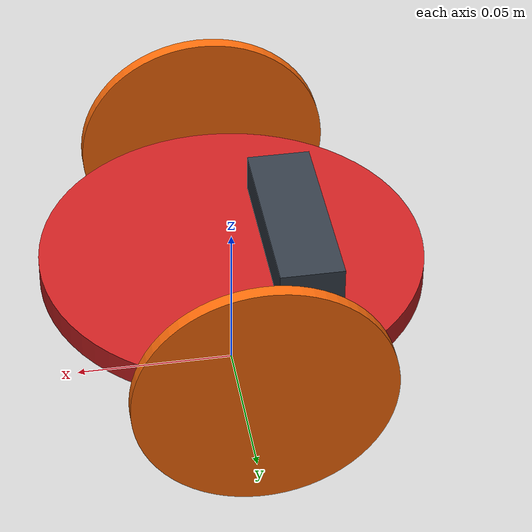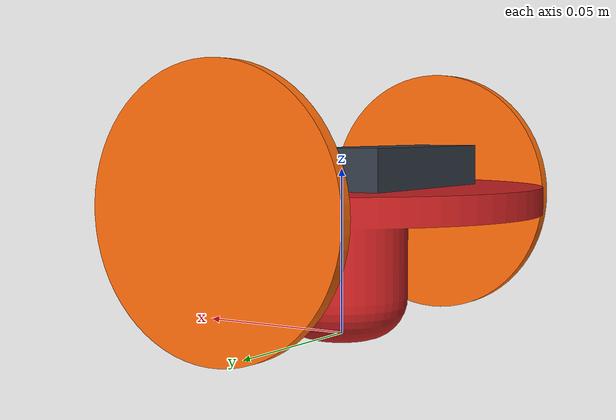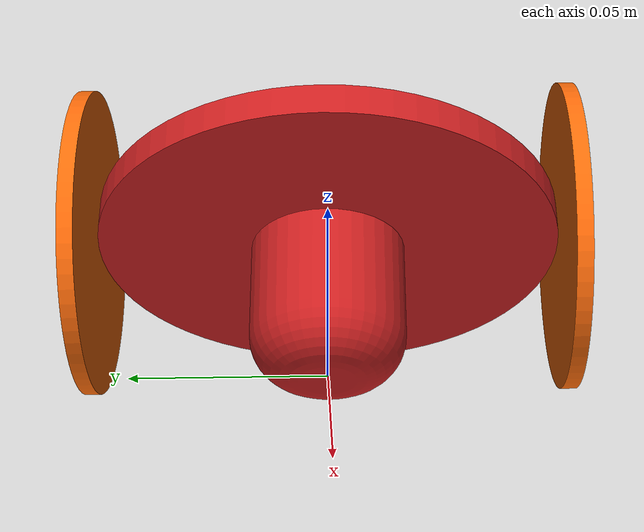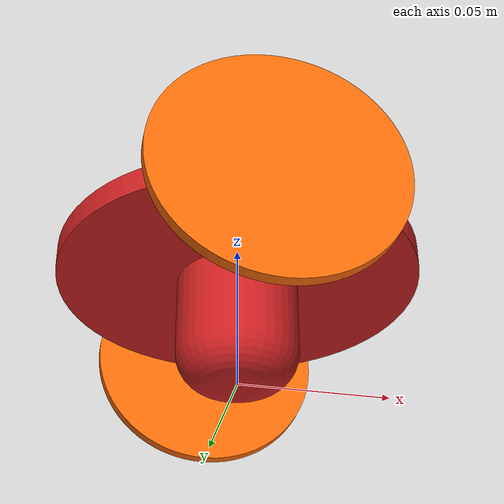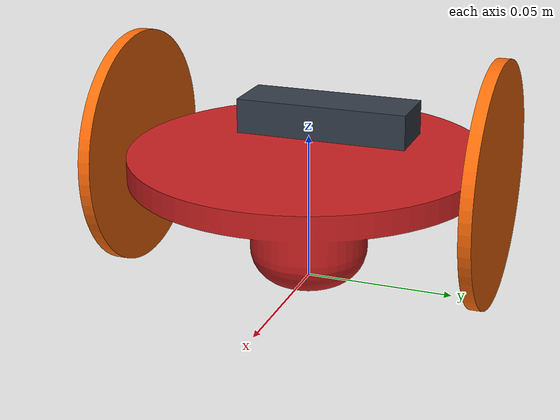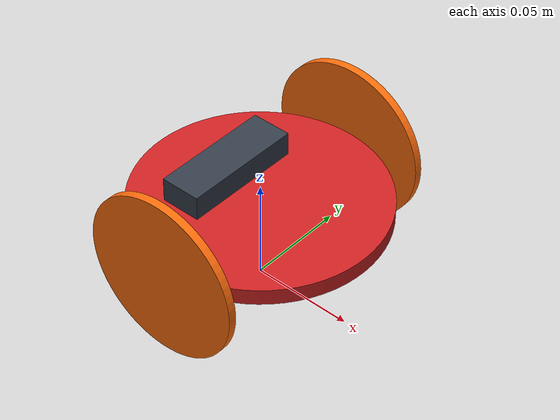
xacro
<?xml version="1.0" ?>
<robot name="m2wr_description" xmlns:xacro="http://www.ros.org/wiki/xacro">

<xacro:include filename="$(find m2wr_description_description)/urdf/materials.xacro" />
<xacro:include filename="$(find m2wr_description_description)/urdf/m2wr_description.trans" />
<xacro:include filename="$(find m2wr_description_description)/urdf/m2wr_description.gazebo" />
<link name="base_link">
  <inertial>
    <origin rpy="0 0 0" xyz="-6.009357995619763e-17 -1.4235303499013823e-09 0.03360579876868525"/>
    <mass value="1.0339660627846412"/>
    <inertia ixx="0.000794" ixy="-0.0" ixz="-0.0" iyy="0.000826" iyz="-0.0" izz="0.001313"/>
  </inertial>
  <visual>
    <origin rpy="0 0 0" xyz="0 0 0"/>
    <geometry>
      <mesh filename="package://m2wr_description_description/meshes/base_link.stl" scale="0.001 0.001 0.001"/>
    </geometry>
    <material name="red"/>
  </visual>
  <collision>
    <origin rpy="0 0 0" xyz="0 0 0"/>
    <geometry>
      <mesh filename="package://m2wr_description_description/meshes/base_link.stl" scale="0.001 0.001 0.001"/>
    </geometry>
  </collision>
</link>

<link name="Component3_1">
  <inertial>
    <origin rpy="0 0 0" xyz="-4.9394705546698643e-17 -0.0019998049718631117 1.7202944714578283e-07"/>
    <mass value="0.1578336149163506"/>
    <inertia ixx="6.3e-05" ixy="0.0" ixz="-0.0" iyy="0.000126" iyz="0.0" izz="6.3e-05"/>
  </inertial>
  <visual>
    <origin rpy="0 0 0" xyz="0.0 0.060002 -0.040407"/>
    <geometry>
      <mesh filename="package://m2wr_description_description/meshes/Component3_1.stl" scale="0.001 0.001 0.001"/>
    </geometry>
    <material name="orange"/>
  </visual>
  <collision>
    <origin rpy="0 0 0" xyz="0.0 0.060002 -0.040407"/>
    <geometry>
      <mesh filename="package://m2wr_description_description/meshes/Component3_1.stl" scale="0.001 0.001 0.001"/>
    </geometry>
  </collision>
</link>

<link name="Component2_1">
  <inertial>
    <origin rpy="0 0 0" xyz="-3.427331697555865e-17 0.001999804971863098 1.7202944462002545e-07"/>
    <mass value="0.15783361491635134"/>
    <inertia ixx="6.3e-05" ixy="0.0" ixz="-0.0" iyy="0.000126" iyz="0.0" izz="6.3e-05"/>
  </inertial>
  <visual>
    <origin rpy="0 0 0" xyz="0.0 -0.060002 -0.040407"/>
    <geometry>
      <mesh filename="package://m2wr_description_description/meshes/Component2_1.stl" scale="0.001 0.001 0.001"/>
    </geometry>
    <material name="orange"/>
  </visual>
  <collision>
    <origin rpy="0 0 0" xyz="0.0 -0.060002 -0.040407"/>
    <geometry>
      <mesh filename="package://m2wr_description_description/meshes/Component2_1.stl" scale="0.001 0.001 0.001"/>
    </geometry>
  </collision>
</link>

<link name="Component4_1">
  <inertial>
    <origin rpy="0 0 0" xyz="-0.020000000000000046 2.220446049250313e-18 0.005999856949279396"/>
    <mass value="0.11304"/>
    <inertia ixx="3.5e-05" ixy="0.0" ixz="-0.0" iyy="5e-06" iyz="0.0" izz="3.8e-05"/>
  </inertial>
  <visual>
    <origin rpy="0 0 0" xyz="0.0 -0.0 -0.045005"/>
    <geometry>
      <mesh filename="package://m2wr_description_description/meshes/Component4_1.stl" scale="0.001 0.001 0.001"/>
    </geometry>
    <material name="blue"/>
  </visual>
  <collision>
    <origin rpy="0 0 0" xyz="0.0 -0.0 -0.045005"/>
    <geometry>
      <mesh filename="package://m2wr_description_description/meshes/Component4_1.stl" scale="0.001 0.001 0.001"/>
    </geometry>
   <surface>
      <friction>
        <ode>
          <mu>0</mu>
          <mu2>0</mu2>
          <slip1>1.0</slip1>
          <slip2>1.0</slip2>
        </ode>
      </friction>
	</surface>
  </collision>
</link>

<joint name="Rev1" type="continuous">
  <origin rpy="0 0 0" xyz="0.0 -0.060002 0.040407"/>
  <parent link="base_link"/>
  <child link="Component3_1"/>
  <axis xyz="0.0 1.0 -0.0"/>
</joint>

<joint name="Rev2" type="continuous">
  <origin rpy="0 0 0" xyz="0.0 0.060002 0.040407"/>
  <parent link="base_link"/>
  <child link="Component2_1"/>
  <axis xyz="0.0 1.0 -0.0"/>
</joint>

<joint name="Rigid3" type="fixed">
  <origin rpy="0 0 0" xyz="0.0 0.0 0.045005"/>
  <parent link="base_link"/>
  <child link="Component4_1"/>
</joint>

</robot>

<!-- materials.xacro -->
<robot name="m2wr_description" xmlns:xacro="http://www.ros.org/wiki/xacro" >

  <material name="black">
    <color rgba="0.0 0.0 0.0 1.0"/>
  </material>
  <material name="blue">
    <color rgba="0.203125 0.23828125 0.28515625 1.0"/>
  </material>
  <material name="green">
    <color rgba="0.0 0.8 0.0 1.0"/>
  </material>
  <material name="grey">
    <color rgba="0.2 0.2 0.2 1.0"/>
  </material>
  <material name="orange">
    <color rgba="1.0 0.423529411765 0.0392156862745 1.0"/>
  </material>
  <material name="brown">
    <color rgba="0.870588235294 0.811764705882 0.764705882353 1.0"/>
  </material>
  <material name="red">
    <color rgba="0.80078125 0.12890625 0.1328125 1.0"/>
  </material>
  <material name="white">
    <color rgba="1.0 1.0 1.0 1.0"/>
  </material>
</robot>
